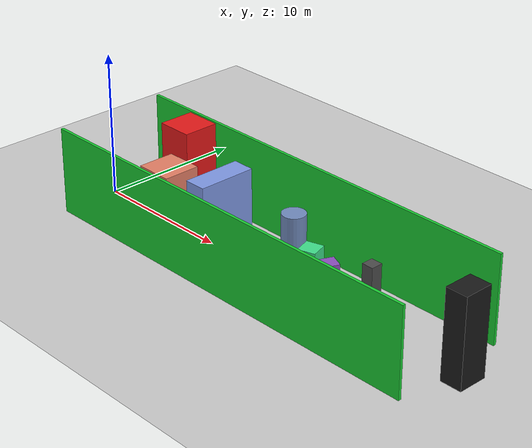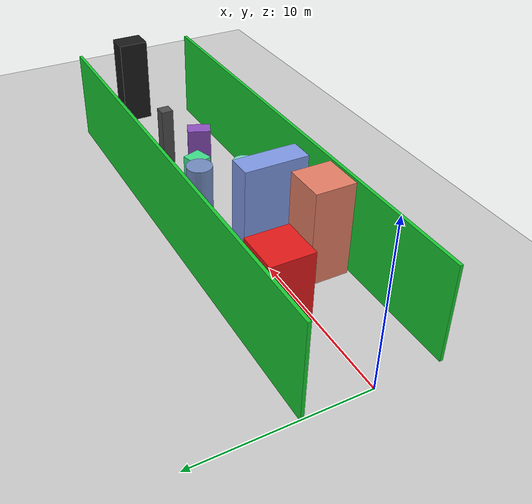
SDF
<sdf version="1.9">
 <world name="default">
  <physics type="ode">
   <max_step_size>0.004</max_step_size>
   <real_time_factor>1.0</real_time_factor>
   <real_time_update_rate>250</real_time_update_rate>
  </physics>
  <gravity>0 0 -9.8</gravity>
  <magnetic_field>6e-06 2.3e-05 -4.2e-05</magnetic_field>
  <atmosphere type="adiabatic"/>
  <scene>
   <grid>false</grid>
   <ambient>0.4 0.4 0.4 1</ambient>
   <background>0.7 0.7 0.7 1</background>
   <shadows>true</shadows>
  </scene>
  <model name="ground_plane">
   <static>true</static>
   <link name="link">
    <collision name="collision">
     <geometry><plane><normal>0 0 1</normal><size>1 1</size></plane></geometry>
    </collision>
    <visual name="visual">
     <geometry><plane><normal>0 0 1</normal><size>500 500</size></plane></geometry>
     <material>
      <ambient>0.8 0.8 0.8 1</ambient>
      <diffuse>0.8 0.8 0.8 1</diffuse>
      <specular>0.8 0.8 0.8 1</specular>
     </material>
    </visual>
    <inertial>
     <mass>1</mass>
     <inertia><ixx>1</ixx><ixy>0</ixy><ixz>0</ixz><iyy>1</iyy><iyz>0</iyz><izz>1</izz></inertia>
    </inertial>
   </link>
  </model>
  <light name="sunUTC" type="directional">
   <pose>0 0 500 0 -0 0</pose>
   <intensity>1</intensity>
   <direction>0.001 0.625 -0.78</direction>
   <diffuse>0.904 0.904 0.904 1</diffuse>
   <specular>0.271 0.271 0.271 1</specular>
   <attenuation><range>2000</range><linear>0</linear><constant>1</constant><quadratic>0</quadratic></attenuation>
   <spot><inner_angle>0</inner_angle><outer_angle>0</outer_angle><falloff>0</falloff></spot>
  </light>
  <model name="wall_left_transparent">
   <pose>15 4 2.5 0 0 0</pose>
   <static>true</static>
   <link name="link">
    <collision name="collision"><geometry><box><size>30 0.2 7</size></box></geometry></collision>
    <visual name="visual">
     <geometry><box><size>30 0.2 7</size></box></geometry>
     <material>
      <ambient>0.1 0.8 0.2 0.9</ambient>
      <diffuse>0.1 0.8 0.2 0.9</diffuse>
      <specular>0.5 0.5 0.5 1</specular>
      <pbr><metal><roughness>0.1</roughness><metalness>0.0</metalness></metal></pbr>
     </material>
    </visual>
   </link>
  </model>
  <model name="wall_right_transparent">
   <pose>15 -4 2.5 0 0 0</pose>
   <static>true</static>
   <link name="link">
    <collision name="collision"><geometry><box><size>30 0.2 7</size></box></geometry></collision>
    <visual name="visual">
     <geometry><box><size>30 0.2 7</size></box></geometry>
     <material>
      <ambient>0.1 0.8 0.2 0.9</ambient>
      <diffuse>0.1 0.8 0.2 0.9</diffuse>
      <specular>0.5 0.5 0.5 1</specular>
      <pbr><metal><roughness>0.1</roughness><metalness>0.0</metalness></metal></pbr>
     </material>
    </visual>
   </link>
  </model>
  <model name="box_blocker_top_left">
   <pose>5 2.5 2.5 0 0 0</pose>
   <static>true</static>
   <link name="link">
    <collision name="c"><geometry><box><size>2.5 2.5 7</size></box></geometry></collision>
    <visual name="v">
     <geometry><box><size>2.5 2.5 7</size></box></geometry>
     <material>
      <ambient>0.9 0.1 0.1 1</ambient>
      <diffuse>0.9 0.1 0.1 1</diffuse>
      <specular>0.5 0.5 0.5 1</specular>
      <pbr><metal><roughness>0.3</roughness><metalness>0.1</metalness></metal></pbr>
     </material>
    </visual>
   </link>
  </model>
  <model name="box_blocker_bottom_right">
   <pose>9 -2.5 2.5 0 0 0</pose>
   <static>true</static>
   <link name="link">
    <collision name="c"><geometry><box><size>2.5 2.5 7</size></box></geometry></collision>
    <visual name="v">
     <geometry><box><size>2.5 2.5 7</size></box></geometry>
     <material>
      <ambient>0.9 0.5 0.6 1</ambient>
      <diffuse>0.9 0.5 0.4 1</diffuse>
      <specular>0.5 0.5 0.5 1</specular>
      <pbr><metal><roughness>0.3</roughness><metalness>0.1</metalness></metal></pbr>
     </material>
    </visual>
   </link>
  </model>
  <model name="wall_blocker_right">
   <pose>12 -1 2.5 0 0 0</pose>
   <static>true</static>
   <link name="link">
    <collision name="c"><geometry><box><size>1.5 4 7</size></box></geometry></collision>
    <visual name="v">
     <geometry><box><size>1.5 4 7</size></box></geometry>
     <material>
      <ambient>0.5 0.6 0.9 1</ambient>
      <diffuse>0.5 0.6 0.9 1</diffuse>
      <specular>0.5 0.5 0.5 1</specular>
      <pbr><metal><roughness>0.3</roughness><metalness>0.1</metalness></metal></pbr>
     </material>
    </visual>
   </link>
  </model>
  <model name="tall_cylinder_obstacle_1">
   <pose>16 1.5 2 0 0 0</pose>
   <static>true</static>
   <link name="link">
    <collision name="c">
     <geometry><cylinder><radius>0.8</radius><length>4</length></cylinder></geometry>
    </collision>
    <visual name="v">
     <geometry><cylinder><radius>0.8</radius><length>4</length></cylinder></geometry>
     <material>
      <ambient>0.45 0.55 0.75 1</ambient>
      <diffuse>0.45 0.55 0.75 1</diffuse>
      <specular>0.5 0.5 0.5 1</specular>
      <pbr><metal><roughness>0.4</roughness><metalness>0.15</metalness></metal></pbr>
     </material>
    </visual>
   </link>
  </model>
  <model name="tall_cylinder_obstacle_2">
   <pose>16 -1.5 1.75 0 0 0</pose>
   <static>true</static>
   <link name="link">
    <collision name="c">
     <geometry><cylinder><radius>0.7</radius><length>3.5</length></cylinder></geometry>
    </collision>
    <visual name="v">
     <geometry><cylinder><radius>0.7</radius><length>3.5</length></cylinder></geometry>
     <material>
      <ambient>0.47 0.85 0.76 1</ambient>
      <diffuse>0.47 0.85 0.76 1</diffuse>
      <specular>0.5 0.5 0.5 1</specular>
      <pbr><metal><roughness>0.4</roughness><metalness>0.15</metalness></metal></pbr>
     </material>
    </visual>
   </link>
  </model>
  <model name="tall_box_obstacle_1">
   <pose>18.5 0.5 1.5 0 0 0.3</pose>
   <static>true</static>
   <link name="link">
    <collision name="c"><geometry><box><size>1.2 1.2 3</size></box></geometry></collision>
    <visual name="v">
     <geometry><box><size>1.2 1.2 3</size></box></geometry>
     <material>
      <ambient>0.25 0.88 0.55 1</ambient>
      <diffuse>0.25 0.88 0.55 1</diffuse>
      <specular>0.5 0.5 0.5 1</specular>
      <pbr><metal><roughness>0.35</roughness><metalness>0.12</metalness></metal></pbr>
     </material>
    </visual>
   </link>
  </model>
  <model name="tall_box_obstacle_2">
   <pose>21 -0.8 1.75 0 0 -0.4</pose>
   <static>true</static>
   <link name="link">
    <collision name="c"><geometry><box><size>1 1.5 3.5</size></box></geometry></collision>
    <visual name="v">
     <geometry><box><size>1 1.5 3.5</size></box></geometry>
     <material>
      <ambient>0.56 0.32 0.76 1</ambient>
      <diffuse>0.56 0.32 0.76 1</diffuse>
      <specular>0.5 0.5 0.5 1</specular>
      <pbr><metal><roughness>0.35</roughness><metalness>0.12</metalness></metal></pbr>
     </material>
    </visual>
   </link>
  </model>
  <model name="tall_pillar_obstacle">
   <pose>23.5 0.5 2 0 0 0</pose>
   <static>true</static>
   <link name="link">
    <collision name="c"><geometry><box><size>0.8 0.8 4</size></box></geometry></collision>
    <visual name="v">
     <geometry><box><size>0.8 0.8 4</size></box></geometry>
     <material>
      <ambient>0.3 0.3 0.3 1</ambient>
      <diffuse>0.3 0.3 0.3 1</diffuse>
      <specular>0.5 0.5 0.5 1</specular>
      <pbr><metal><roughness>0.3</roughness><metalness>0.15</metalness></metal></pbr>
     </material>
    </visual>
   </link>
  </model>
  <model name="finish_center_post">
   <pose>31 0 2.5 0 0 0</pose>
   <static>true</static>
   <link name="link">
    <collision name="c"><geometry><box><size>1.5 2 7</size></box></geometry></collision>
    <visual name="v">
     <geometry><box><size>1.5 2 7</size></box></geometry>
     <material>
      <ambient>0.1 0.1 0.1 1</ambient>
      <diffuse>0.1 0.1 0.1 1</diffuse>
      <specular>0.5 0.5 0.5 1</specular>
      <pbr><metal><roughness>0.3</roughness><metalness>0.1</metalness></metal></pbr>
     </material>
    </visual>
   </link>
  </model>
  <spherical_coordinates>
   <surface_model>EARTH_WGS84</surface_model>
   <world_frame_orientation>ENU</world_frame_orientation>
   <latitude_deg>47.397971057728974</latitude_deg>
   <longitude_deg>8.546163739800146</longitude_deg>
   <elevation>0</elevation>
  </spherical_coordinates>
 </world>
</sdf>
